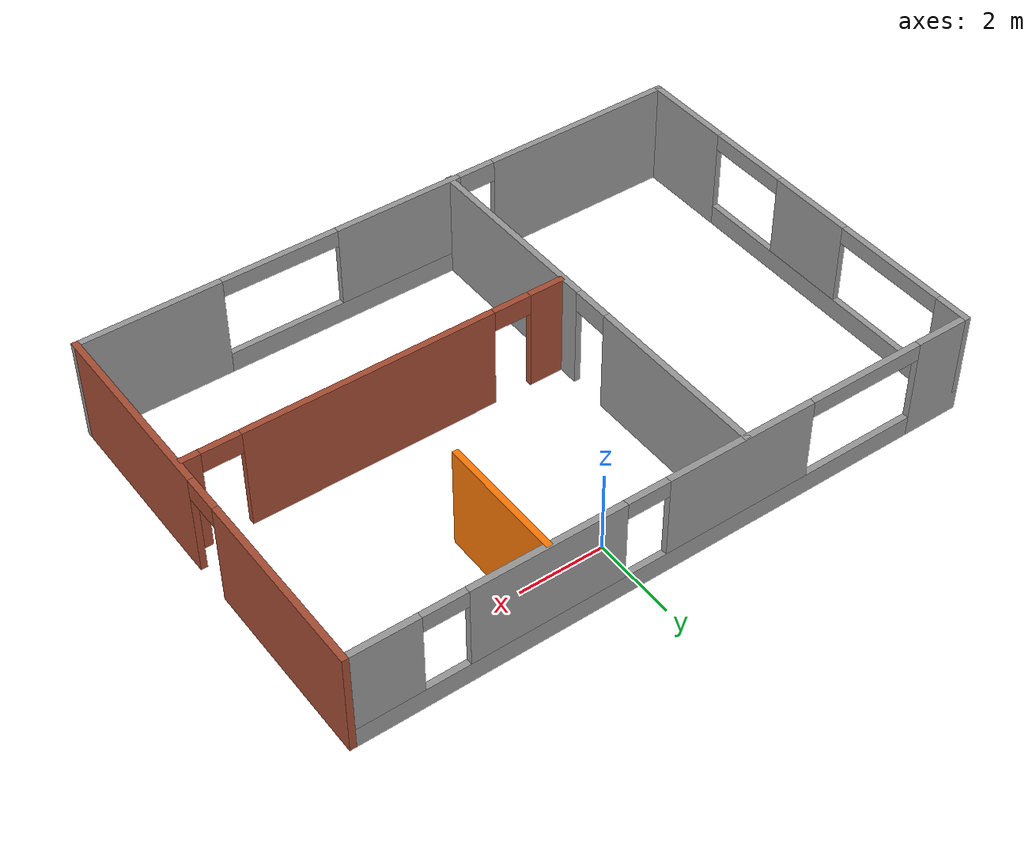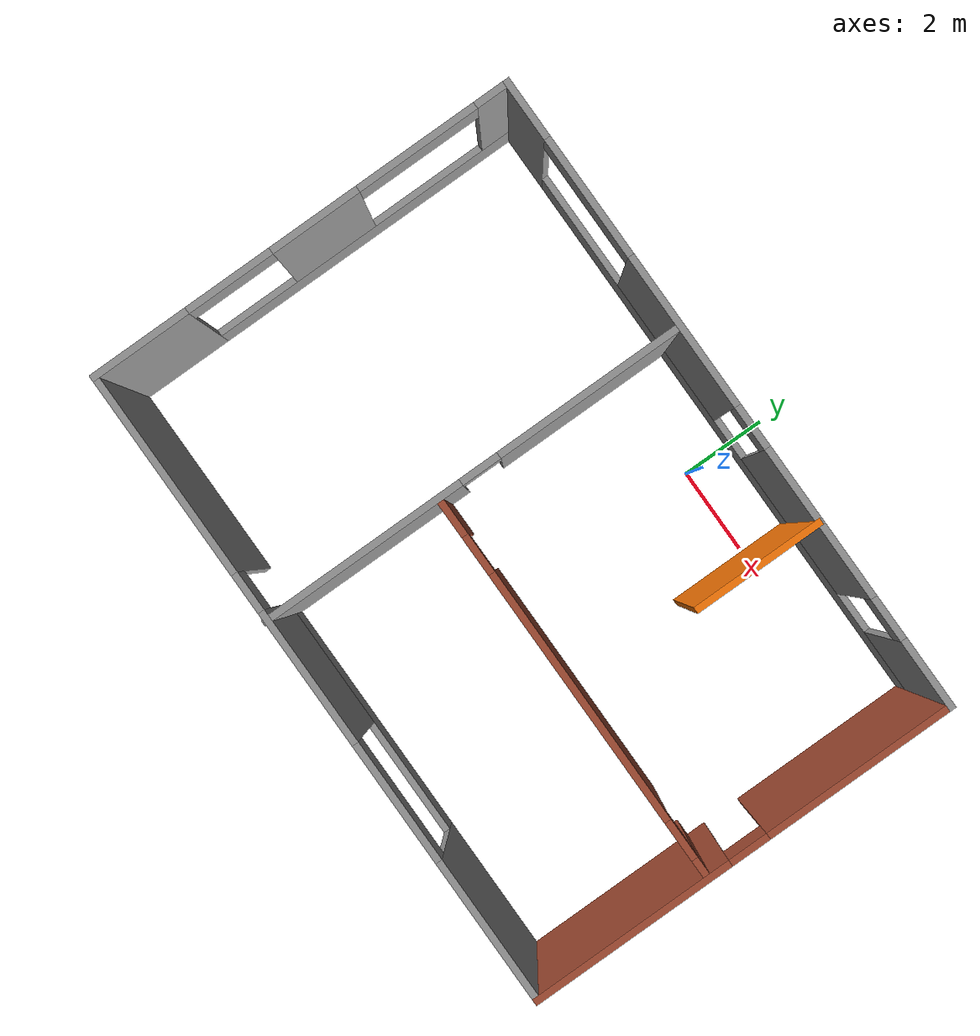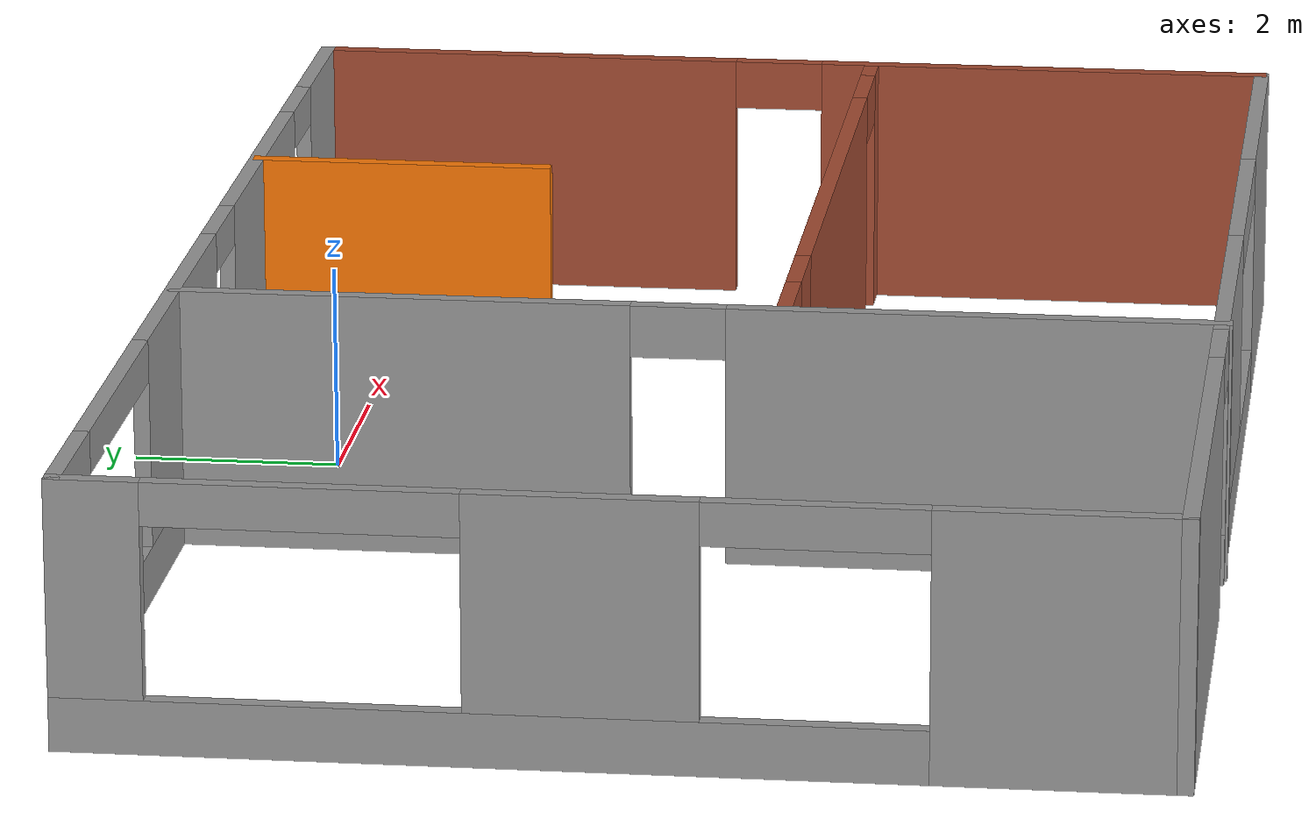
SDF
<?xml version='1.0'?>
<sdf version='1.6'>
  <model name='Building'>
    <pose frame=''>-0.874923 -3.80883 0 0 -0 0</pose>
    <link name='Wall_11'>
      <collision name='Wall_11_Collision'>
        <geometry>
          <box>
            <size>3 0.15 2.5</size>
          </box>
        </geometry>
        <pose frame=''>0 0 1.25 0 -0 0</pose>
      </collision>
      <visual name='Wall_11_Visual'>
        <pose frame=''>0 0 1.25 0 -0 0</pose>
        <geometry>
          <box>
            <size>3 0.15 2.5</size>
          </box>
        </geometry>
        <material>
          <script>
            <uri>file://media/materials/scripts/gazebo.material</uri>
            <name>Gazebo/Grey</name>
          </script>
          <ambient>0.996078 0.47451 0.0196078 1</ambient>
        </material>
        <meta>
          <layer>0</layer>
        </meta>
      </visual>
      <pose frame=''>3.03862 3.47222 0 0 0 -1.5708</pose>
    </link>
    <link name='Wall_2'>
      <pose frame=''>-7.425 0.012574 0 0 -0 1.5708</pose>
      <visual name='Wall_2_Visual_0'>
        <pose frame=''>-3.85798 0 1.25 0 -0 0</pose>
        <geometry>
          <box>
            <size>2.28405 0.15 2.5</size>
          </box>
        </geometry>
        <material>
          <script>
            <uri>file://media/materials/scripts/gazebo.material</uri>
            <name>Gazebo/Grey</name>
          </script>
          <ambient>1 1 1 1</ambient>
        </material>
        <meta>
          <layer>0</layer>
        </meta>
      </visual>
      <collision name='Wall_2_Collision_0'>
        <geometry>
          <box>
            <size>2.28405 0.15 2.5</size>
          </box>
        </geometry>
        <pose frame=''>-3.85798 0 1.25 0 -0 0</pose>
      </collision>
      <visual name='Wall_2_Visual_1'>
        <pose frame=''>1.14202 0 0.25 0 -0 0</pose>
        <geometry>
          <box>
            <size>7.71595 0.15 0.5</size>
          </box>
        </geometry>
        <material>
          <script>
            <uri>file://media/materials/scripts/gazebo.material</uri>
            <name>Gazebo/Grey</name>
          </script>
          <ambient>1 1 1 1</ambient>
        </material>
        <meta>
          <layer>0</layer>
        </meta>
      </visual>
      <collision name='Wall_2_Collision_1'>
        <geometry>
          <box>
            <size>7.71595 0.15 0.5</size>
          </box>
        </geometry>
        <pose frame=''>1.14202 0 0.25 0 -0 0</pose>
      </collision>
      <visual name='Wall_2_Visual_2'>
        <pose frame=''>0.319732 0 1.5 0 -0 0</pose>
        <geometry>
          <box>
            <size>2.07137 0.15 2</size>
          </box>
        </geometry>
        <material>
          <script>
            <uri>file://media/materials/scripts/gazebo.material</uri>
            <name>Gazebo/Grey</name>
          </script>
          <ambient>1 1 1 1</ambient>
        </material>
        <meta>
          <layer>0</layer>
        </meta>
      </visual>
      <collision name='Wall_2_Collision_2'>
        <geometry>
          <box>
            <size>2.07137 0.15 2</size>
          </box>
        </geometry>
        <pose frame=''>0.319732 0 1.5 0 -0 0</pose>
      </collision>
      <visual name='Wall_2_Visual_3'>
        <pose frame=''>4.57771 0 1.5 0 -0 0</pose>
        <geometry>
          <box>
            <size>0.844581 0.15 2</size>
          </box>
        </geometry>
        <material>
          <script>
            <uri>file://media/materials/scripts/gazebo.material</uri>
            <name>Gazebo/Grey</name>
          </script>
          <ambient>1 1 1 1</ambient>
        </material>
        <meta>
          <layer>0</layer>
        </meta>
      </visual>
      <collision name='Wall_2_Collision_3'>
        <geometry>
          <box>
            <size>0.844581 0.15 2</size>
          </box>
        </geometry>
        <pose frame=''>4.57771 0 1.5 0 -0 0</pose>
      </collision>
      <visual name='Wall_2_Visual_4'>
        <pose frame=''>-1.71595 0 2.3 0 -0 0</pose>
        <geometry>
          <box>
            <size>2 0.15 0.4</size>
          </box>
        </geometry>
        <material>
          <script>
            <uri>file://media/materials/scripts/gazebo.material</uri>
            <name>Gazebo/Grey</name>
          </script>
          <ambient>1 1 1 1</ambient>
        </material>
        <meta>
          <layer>0</layer>
        </meta>
      </visual>
      <collision name='Wall_2_Collision_4'>
        <geometry>
          <box>
            <size>2 0.15 0.4</size>
          </box>
        </geometry>
        <pose frame=''>-1.71595 0 2.3 0 -0 0</pose>
      </collision>
      <visual name='Wall_2_Visual_5'>
        <pose frame=''>2.75542 0 2.3 0 -0 0</pose>
        <geometry>
          <box>
            <size>2.8 0.15 0.4</size>
          </box>
        </geometry>
        <material>
          <script>
            <uri>file://media/materials/scripts/gazebo.material</uri>
            <name>Gazebo/Grey</name>
          </script>
          <ambient>1 1 1 1</ambient>
        </material>
        <meta>
          <layer>0</layer>
        </meta>
      </visual>
      <collision name='Wall_2_Collision_5'>
        <geometry>
          <box>
            <size>2.8 0.15 0.4</size>
          </box>
        </geometry>
        <pose frame=''>2.75542 0 2.3 0 -0 0</pose>
      </collision>
    </link>
    <link name='Wall_3'>
      <pose frame=''>0 4.93757 0 0 -0 0</pose>
      <visual name='Wall_3_Visual_0'>
        <pose frame=''>-6.80132 0 1.25 0 -0 0</pose>
        <geometry>
          <box>
            <size>1.39737 0.15 2.5</size>
          </box>
        </geometry>
        <material>
          <script>
            <uri>file://media/materials/scripts/gazebo.material</uri>
            <name>Gazebo/Grey</name>
          </script>
          <ambient>1 1 1 1</ambient>
        </material>
        <meta>
          <layer>0</layer>
        </meta>
      </visual>
      <collision name='Wall_3_Collision_0'>
        <geometry>
          <box>
            <size>1.39737 0.15 2.5</size>
          </box>
        </geometry>
        <pose frame=''>-6.80132 0 1.25 0 -0 0</pose>
      </collision>
      <visual name='Wall_3_Visual_1'>
        <pose frame=''>0.698683 0 0.25 0 -0 0</pose>
        <geometry>
          <box>
            <size>13.6026 0.15 0.5</size>
          </box>
        </geometry>
        <material>
          <script>
            <uri>file://media/materials/scripts/gazebo.material</uri>
            <name>Gazebo/Grey</name>
          </script>
          <ambient>1 1 1 1</ambient>
        </material>
        <meta>
          <layer>0</layer>
        </meta>
      </visual>
      <collision name='Wall_3_Collision_1'>
        <geometry>
          <box>
            <size>13.6026 0.15 0.5</size>
          </box>
        </geometry>
        <pose frame=''>0.698683 0 0.25 0 -0 0</pose>
      </collision>
      <visual name='Wall_3_Visual_2'>
        <pose frame=''>-1.51506 0 1.5 0 -0 0</pose>
        <geometry>
          <box>
            <size>3.57515 0.15 2</size>
          </box>
        </geometry>
        <material>
          <script>
            <uri>file://media/materials/scripts/gazebo.material</uri>
            <name>Gazebo/Grey</name>
          </script>
          <ambient>1 1 1 1</ambient>
        </material>
        <meta>
          <layer>0</layer>
        </meta>
      </visual>
      <collision name='Wall_3_Collision_2'>
        <geometry>
          <box>
            <size>3.57515 0.15 2</size>
          </box>
        </geometry>
        <pose frame=''>-1.51506 0 1.5 0 -0 0</pose>
      </collision>
      <visual name='Wall_3_Visual_3'>
        <pose frame=''>3.05383 0 1.5 0 -0 0</pose>
        <geometry>
          <box>
            <size>3.56263 0.15 2</size>
          </box>
        </geometry>
        <material>
          <script>
            <uri>file://media/materials/scripts/gazebo.material</uri>
            <name>Gazebo/Grey</name>
          </script>
          <ambient>1 1 1 1</ambient>
        </material>
        <meta>
          <layer>0</layer>
        </meta>
      </visual>
      <collision name='Wall_3_Collision_3'>
        <geometry>
          <box>
            <size>3.56263 0.15 2</size>
          </box>
        </geometry>
        <pose frame=''>3.05383 0 1.5 0 -0 0</pose>
      </collision>
      <visual name='Wall_3_Visual_4'>
        <pose frame=''>6.66757 0 1.5 0 -0 0</pose>
        <geometry>
          <box>
            <size>1.66486 0.15 2</size>
          </box>
        </geometry>
        <material>
          <script>
            <uri>file://media/materials/scripts/gazebo.material</uri>
            <name>Gazebo/Grey</name>
          </script>
          <ambient>1 1 1 1</ambient>
        </material>
        <meta>
          <layer>0</layer>
        </meta>
      </visual>
      <collision name='Wall_3_Collision_4'>
        <geometry>
          <box>
            <size>1.66486 0.15 2</size>
          </box>
        </geometry>
        <pose frame=''>6.66757 0 1.5 0 -0 0</pose>
      </collision>
      <visual name='Wall_3_Visual_5'>
        <pose frame=''>-4.70263 0 2.3 0 -0 0</pose>
        <geometry>
          <box>
            <size>2.8 0.15 0.4</size>
          </box>
        </geometry>
        <material>
          <script>
            <uri>file://media/materials/scripts/gazebo.material</uri>
            <name>Gazebo/Grey</name>
          </script>
          <ambient>1 1 1 1</ambient>
        </material>
        <meta>
          <layer>0</layer>
        </meta>
      </visual>
      <collision name='Wall_3_Collision_5'>
        <geometry>
          <box>
            <size>2.8 0.15 0.4</size>
          </box>
        </geometry>
        <pose frame=''>-4.70263 0 2.3 0 -0 0</pose>
      </collision>
      <visual name='Wall_3_Visual_6'>
        <pose frame=''>0.772516 0 2.3 0 -0 0</pose>
        <geometry>
          <box>
            <size>1 0.15 0.4</size>
          </box>
        </geometry>
        <material>
          <script>
            <uri>file://media/materials/scripts/gazebo.material</uri>
            <name>Gazebo/Grey</name>
          </script>
          <ambient>1 1 1 1</ambient>
        </material>
        <meta>
          <layer>0</layer>
        </meta>
      </visual>
      <collision name='Wall_3_Collision_6'>
        <geometry>
          <box>
            <size>1 0.15 0.4</size>
          </box>
        </geometry>
        <pose frame=''>0.772516 0 2.3 0 -0 0</pose>
      </collision>
      <visual name='Wall_3_Visual_7'>
        <pose frame=''>5.33514 0 2.3 0 -0 0</pose>
        <geometry>
          <box>
            <size>1 0.15 0.4</size>
          </box>
        </geometry>
        <material>
          <script>
            <uri>file://media/materials/scripts/gazebo.material</uri>
            <name>Gazebo/Grey</name>
          </script>
          <ambient>1 1 1 1</ambient>
        </material>
        <meta>
          <layer>0</layer>
        </meta>
      </visual>
      <collision name='Wall_3_Collision_7'>
        <geometry>
          <box>
            <size>1 0.15 0.4</size>
          </box>
        </geometry>
        <pose frame=''>5.33514 0 2.3 0 -0 0</pose>
      </collision>
    </link>
    <link name='Wall_4'>
      <pose frame=''>7.425 0.012574 0 0 0 -1.5708</pose>
      <visual name='Wall_4_Visual_0'>
        <pose frame=''>-2.78715 0 1.25 0 -0 0</pose>
        <geometry>
          <box>
            <size>4.4257 0.15 2.5</size>
          </box>
        </geometry>
        <material>
          <script>
            <uri>file://media/materials/scripts/gazebo.material</uri>
            <name>Gazebo/Bricks</name>
          </script>
          <ambient>1 1 1 1</ambient>
        </material>
        <meta>
          <layer>0</layer>
        </meta>
      </visual>
      <collision name='Wall_4_Collision_0'>
        <geometry>
          <box>
            <size>4.4257 0.15 2.5</size>
          </box>
        </geometry>
        <pose frame=''>-2.78715 0 1.25 0 -0 0</pose>
      </collision>
      <visual name='Wall_4_Visual_1'>
        <pose frame=''>2.66285 0 1.25 0 -0 0</pose>
        <geometry>
          <box>
            <size>4.67431 0.15 2.5</size>
          </box>
        </geometry>
        <material>
          <script>
            <uri>file://media/materials/scripts/gazebo.material</uri>
            <name>Gazebo/Bricks</name>
          </script>
          <ambient>1 1 1 1</ambient>
        </material>
        <meta>
          <layer>0</layer>
        </meta>
      </visual>
      <collision name='Wall_4_Collision_1'>
        <geometry>
          <box>
            <size>4.67431 0.15 2.5</size>
          </box>
        </geometry>
        <pose frame=''>2.66285 0 1.25 0 -0 0</pose>
      </collision>
      <visual name='Wall_4_Visual_2'>
        <pose frame=''>-0.124305 0 2.25 0 -0 0</pose>
        <geometry>
          <box>
            <size>0.9 0.15 0.5</size>
          </box>
        </geometry>
        <material>
          <script>
            <uri>file://media/materials/scripts/gazebo.material</uri>
            <name>Gazebo/Bricks</name>
          </script>
          <ambient>1 1 1 1</ambient>
        </material>
        <meta>
          <layer>0</layer>
        </meta>
      </visual>
      <collision name='Wall_4_Collision_2'>
        <geometry>
          <box>
            <size>0.9 0.15 0.5</size>
          </box>
        </geometry>
        <pose frame=''>-0.124305 0 2.25 0 -0 0</pose>
      </collision>
    </link>
    <link name='Wall_5'>
      <pose frame=''>0 -4.91243 0 0 -0 3.14159</pose>
      <visual name='Wall_5_Visual_0'>
        <pose frame=''>-5.80962 0 1.25 0 -0 0</pose>
        <geometry>
          <box>
            <size>3.38076 0.15 2.5</size>
          </box>
        </geometry>
        <material>
          <script>
            <uri>file://media/materials/scripts/gazebo.material</uri>
            <name>Gazebo/Grey</name>
          </script>
          <ambient>1 1 1 1</ambient>
        </material>
        <meta>
          <layer>0</layer>
        </meta>
      </visual>
      <collision name='Wall_5_Collision_0'>
        <geometry>
          <box>
            <size>3.38076 0.15 2.5</size>
          </box>
        </geometry>
        <pose frame=''>-5.80962 0 1.25 0 -0 0</pose>
      </collision>
      <visual name='Wall_5_Visual_1'>
        <pose frame=''>5.11722 0 1.25 0 -0 0</pose>
        <geometry>
          <box>
            <size>4.76556 0.15 2.5</size>
          </box>
        </geometry>
        <material>
          <script>
            <uri>file://media/materials/scripts/gazebo.material</uri>
            <name>Gazebo/Grey</name>
          </script>
          <ambient>1 1 1 1</ambient>
        </material>
        <meta>
          <layer>0</layer>
        </meta>
      </visual>
      <collision name='Wall_5_Collision_1'>
        <geometry>
          <box>
            <size>4.76556 0.15 2.5</size>
          </box>
        </geometry>
        <pose frame=''>5.11722 0 1.25 0 -0 0</pose>
      </collision>
      <visual name='Wall_5_Visual_2'>
        <pose frame=''>-1.1424 0 0.25 0 -0 0</pose>
        <geometry>
          <box>
            <size>5.95368 0.15 0.5</size>
          </box>
        </geometry>
        <material>
          <script>
            <uri>file://media/materials/scripts/gazebo.material</uri>
            <name>Gazebo/Grey</name>
          </script>
          <ambient>1 1 1 1</ambient>
        </material>
        <meta>
          <layer>0</layer>
        </meta>
      </visual>
      <collision name='Wall_5_Collision_2'>
        <geometry>
          <box>
            <size>5.95368 0.15 0.5</size>
          </box>
        </geometry>
        <pose frame=''>-1.1424 0 0.25 0 -0 0</pose>
      </collision>
      <visual name='Wall_5_Visual_3'>
        <pose frame=''>0.257603 0 1.5 0 -0 0</pose>
        <geometry>
          <box>
            <size>3.15368 0.15 2</size>
          </box>
        </geometry>
        <material>
          <script>
            <uri>file://media/materials/scripts/gazebo.material</uri>
            <name>Gazebo/Grey</name>
          </script>
          <ambient>1 1 1 1</ambient>
        </material>
        <meta>
          <layer>0</layer>
        </meta>
      </visual>
      <collision name='Wall_5_Collision_3'>
        <geometry>
          <box>
            <size>3.15368 0.15 2</size>
          </box>
        </geometry>
        <pose frame=''>0.257603 0 1.5 0 -0 0</pose>
      </collision>
      <visual name='Wall_5_Visual_4'>
        <pose frame=''>2.28444 0 2.25 0 -0 0</pose>
        <geometry>
          <box>
            <size>0.9 0.15 0.5</size>
          </box>
        </geometry>
        <material>
          <script>
            <uri>file://media/materials/scripts/gazebo.material</uri>
            <name>Gazebo/Grey</name>
          </script>
          <ambient>1 1 1 1</ambient>
        </material>
        <meta>
          <layer>0</layer>
        </meta>
      </visual>
      <collision name='Wall_5_Collision_4'>
        <geometry>
          <box>
            <size>0.9 0.15 0.5</size>
          </box>
        </geometry>
        <pose frame=''>2.28444 0 2.25 0 -0 0</pose>
      </collision>
      <visual name='Wall_5_Visual_5'>
        <pose frame=''>-2.71924 0 2.3 0 -0 0</pose>
        <geometry>
          <box>
            <size>2.8 0.15 0.4</size>
          </box>
        </geometry>
        <material>
          <script>
            <uri>file://media/materials/scripts/gazebo.material</uri>
            <name>Gazebo/Grey</name>
          </script>
          <ambient>1 1 1 1</ambient>
        </material>
        <meta>
          <layer>0</layer>
        </meta>
      </visual>
      <collision name='Wall_5_Collision_5'>
        <geometry>
          <box>
            <size>2.8 0.15 0.4</size>
          </box>
        </geometry>
        <pose frame=''>-2.71924 0 2.3 0 -0 0</pose>
      </collision>
    </link>
    <link name='Wall_7'>
      <pose frame=''>-1.63047 -0.012574 0 0 0 -1.5708</pose>
      <visual name='Wall_7_Visual_0'>
        <pose frame=''>-2.80733 0 1.25 0 -0 0</pose>
        <geometry>
          <box>
            <size>4.38534 0.15 2.5</size>
          </box>
        </geometry>
        <material>
          <script>
            <uri>file://media/materials/scripts/gazebo.material</uri>
            <name>Gazebo/Grey</name>
          </script>
          <ambient>1 1 1 1</ambient>
        </material>
        <meta>
          <layer>0</layer>
        </meta>
      </visual>
      <collision name='Wall_7_Collision_0'>
        <geometry>
          <box>
            <size>4.38534 0.15 2.5</size>
          </box>
        </geometry>
        <pose frame=''>-2.80733 0 1.25 0 -0 0</pose>
      </collision>
      <visual name='Wall_7_Visual_1'>
        <pose frame=''>2.64267 0 1.25 0 -0 0</pose>
        <geometry>
          <box>
            <size>4.71466 0.15 2.5</size>
          </box>
        </geometry>
        <material>
          <script>
            <uri>file://media/materials/scripts/gazebo.material</uri>
            <name>Gazebo/Grey</name>
          </script>
          <ambient>1 1 1 1</ambient>
        </material>
        <meta>
          <layer>0</layer>
        </meta>
      </visual>
      <collision name='Wall_7_Collision_1'>
        <geometry>
          <box>
            <size>4.71466 0.15 2.5</size>
          </box>
        </geometry>
        <pose frame=''>2.64267 0 1.25 0 -0 0</pose>
      </collision>
      <visual name='Wall_7_Visual_2'>
        <pose frame=''>-0.164661 0 2.25 0 -0 0</pose>
        <geometry>
          <box>
            <size>0.9 0.15 0.5</size>
          </box>
        </geometry>
        <material>
          <script>
            <uri>file://media/materials/scripts/gazebo.material</uri>
            <name>Gazebo/Grey</name>
          </script>
          <ambient>1 1 1 1</ambient>
        </material>
        <meta>
          <layer>0</layer>
        </meta>
      </visual>
      <collision name='Wall_7_Collision_2'>
        <geometry>
          <box>
            <size>0.9 0.15 0.5</size>
          </box>
        </geometry>
        <pose frame=''>-0.164661 0 2.25 0 -0 0</pose>
      </collision>
    </link>
    <link name='Wall_9'>
      <pose frame=''>2.88579 -0.836482 0 0 -0 0</pose>
      <visual name='Wall_9_Visual_0'>
        <pose frame=''>-4.06394 0 1.25 0 -0 0</pose>
        <geometry>
          <box>
            <size>0.872117 0.15 2.5</size>
          </box>
        </geometry>
        <material>
          <script>
            <uri>file://media/materials/scripts/gazebo.material</uri>
            <name>Gazebo/Bricks</name>
          </script>
          <ambient>1 1 1 1</ambient>
        </material>
        <meta>
          <layer>0</layer>
        </meta>
      </visual>
      <collision name='Wall_9_Collision_0'>
        <geometry>
          <box>
            <size>0.872117 0.15 2.5</size>
          </box>
        </geometry>
        <pose frame=''>-4.06394 0 1.25 0 -0 0</pose>
      </collision>
      <visual name='Wall_9_Visual_1'>
        <pose frame=''>0.221273 0 1.25 0 -0 0</pose>
        <geometry>
          <box>
            <size>5.89831 0.15 2.5</size>
          </box>
        </geometry>
        <material>
          <script>
            <uri>file://media/materials/scripts/gazebo.material</uri>
            <name>Gazebo/Bricks</name>
          </script>
          <ambient>1 1 1 1</ambient>
        </material>
        <meta>
          <layer>0</layer>
        </meta>
      </visual>
      <collision name='Wall_9_Collision_1'>
        <geometry>
          <box>
            <size>5.89831 0.15 2.5</size>
          </box>
        </geometry>
        <pose frame=''>0.221273 0 1.25 0 -0 0</pose>
      </collision>
      <visual name='Wall_9_Visual_2'>
        <pose frame=''>4.28521 0 1.25 0 -0 0</pose>
        <geometry>
          <box>
            <size>0.429571 0.15 2.5</size>
          </box>
        </geometry>
        <material>
          <script>
            <uri>file://media/materials/scripts/gazebo.material</uri>
            <name>Gazebo/Bricks</name>
          </script>
          <ambient>1 1 1 1</ambient>
        </material>
        <meta>
          <layer>0</layer>
        </meta>
      </visual>
      <collision name='Wall_9_Collision_2'>
        <geometry>
          <box>
            <size>0.429571 0.15 2.5</size>
          </box>
        </geometry>
        <pose frame=''>4.28521 0 1.25 0 -0 0</pose>
      </collision>
      <visual name='Wall_9_Visual_3'>
        <pose frame=''>-3.17788 0 2.25 0 -0 0</pose>
        <geometry>
          <box>
            <size>0.9 0.15 0.5</size>
          </box>
        </geometry>
        <material>
          <script>
            <uri>file://media/materials/scripts/gazebo.material</uri>
            <name>Gazebo/Bricks</name>
          </script>
          <ambient>1 1 1 1</ambient>
        </material>
        <meta>
          <layer>0</layer>
        </meta>
      </visual>
      <collision name='Wall_9_Collision_3'>
        <geometry>
          <box>
            <size>0.9 0.15 0.5</size>
          </box>
        </geometry>
        <pose frame=''>-3.17788 0 2.25 0 -0 0</pose>
      </collision>
      <visual name='Wall_9_Visual_4'>
        <pose frame=''>3.62043 0 2.25 0 -0 0</pose>
        <geometry>
          <box>
            <size>0.9 0.15 0.5</size>
          </box>
        </geometry>
        <material>
          <script>
            <uri>file://media/materials/scripts/gazebo.material</uri>
            <name>Gazebo/Bricks</name>
          </script>
          <ambient>1 1 1 1</ambient>
        </material>
        <meta>
          <layer>0</layer>
        </meta>
      </visual>
      <collision name='Wall_9_Collision_4'>
        <geometry>
          <box>
            <size>0.9 0.15 0.5</size>
          </box>
        </geometry>
        <pose frame=''>3.62043 0 2.25 0 -0 0</pose>
      </collision>
    </link>
    <static>1</static>
  </model>
</sdf>
